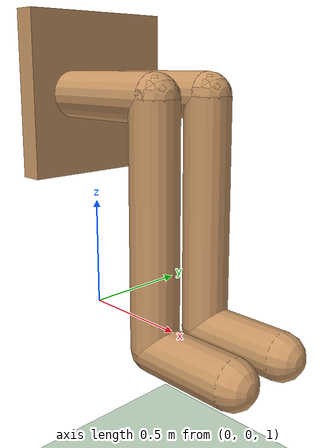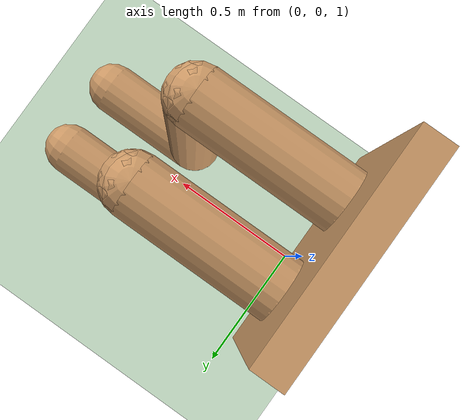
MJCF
<?xml version="1.0" encoding="utf-8"?>
<mujoco model="srlrobot">
	<compiler/>
	<option gravity="0 0 0"/>
	<size nconmax="500" njmax="1000"/>
	<custom/>
	<default>
		<joint armature="1" damping="1" limited="true"/>
		<geom conaffinity="0" condim="3" margin="0.01" rgba="0.8 0.6 0.4 1"/>
	</default>
	<asset>
		<texture builtin="gradient" height="100" rgb1="1 1 1" rgb2="0 0 0" type="skybox" width="100"/>
		<texture builtin="flat" height="1278" mark="cross" markrgb="1 1 1" name="texgeom" random="0.01" rgb1="0.8 0.6 0.4" rgb2="0.8 0.6 0.4" type="cube" width="127"/>
		<texture builtin="checker" height="100" name="texplane" rgb1="0 0 0" rgb2="0.8 0.8 0.8" type="2d" width="100"/>
		<material name="MatPlane" reflectance="0.5" shininess="1" specular="1" texrepeat="60 60" texture="texplane"/>
		<material name="geom" texture="texgeom" texuniform="true"/>
	</asset>
	<worldbody>
		<light cutoff="100" diffuse="1 1 1" dir="0 0 -1.3" directional="true" exponent="1" pos="0 0 1.3" specular="0.1 0.1 0.1"/>
		<geom conaffinity="1" condim="3" material="MatPlane" name="floor" pos="0 0 0" rgba="0.8 0.9 0.8 1" size="40 40 40" type="plane"/>
		<body name="root" pos="0 0 2" euler="0 0 0">
			<geom name="geomroot" pos="0 0 0" size="0.05 0.35 0.35" type="box"/>
			<body name="leg1" pos="0.05 -0.15 0" euler="0 0 0">
				<geom fromto="0 0 0 0.5 0 0" name="geomleg1" size="0.1" type="capsule"/>
				<joint axis="0 0 1" name="joint_joint01" pos="0 0 0" range="-45 45" type="hinge"/>
				<joint axis="0 1 0" name="joint_joint02" pos="0 0 0" range="-45 45" type="hinge"/>
				<body name="shin1" pos="0.5 0 0" euler="0 90 0">
					<geom fromto="0 0 0 1.0 0 0" name="geomshin1" size="0.1" type="capsule"/>
					<joint axis="0 1 0" name="joint_joint1" pos="0 0 0" range="-45 45" type="hinge"/>
					<body name="shin2" pos="1.0 0 0" euler="0 -90 0">
						<geom fromto="0 0 0 0.4 0 0" name="geomshin2" size="0.1" type="capsule"/>
						<joint axis="0 1 0" name="joint_joint2" pos="0 0 0" range="-45 45" type="hinge"/>
					</body>
				</body>
			</body>
			<body name="leg2" pos="0.05 0.15 0" euler="0 0 0">
				<geom fromto="0 0 0 0.5 0 0" name="geomleg2" size="0.1" type="capsule"/>
				<joint axis="0 0 1" name="joint_joint11" pos="0 0 0" range="-45 45" type="hinge"/>
				<joint axis="0 1 0" name="joint_joint12" pos="0 0 0" range="-45 45" type="hinge"/>
				<body name="shin11" pos="0.5 0 0" euler="0 90 0">
					<geom fromto="0 0 0 1.0 0 0" name="geomshin11" size="0.1" type="capsule"/>
					<joint axis="0 1 0" name="joint_joint13" pos="0 0 0" range="-45 45" type="hinge"/>
					<body name="shin12" pos="1.0 0 0" euler="0 -90 0">
						<geom fromto="0 0 0 0.4 0 0" name="geomshin12" size="0.1" type="capsule"/>
						<joint axis="0 1 0" name="joint_joint14" pos="0 0 0" range="-45 45" type="hinge"/>
					</body>
				</body>
			</body>
		</body>
	</worldbody>
	<actuator>
		<motor ctrllimited="true" ctrlrange="-1 1" joint="joint_joint01"/>
		<motor ctrllimited="true" ctrlrange="-1 1" joint="joint_joint02"/>
		<motor ctrllimited="true" ctrlrange="-1 1" joint="joint_joint1"/>
		<motor ctrllimited="true" ctrlrange="-1 1" joint="joint_joint2"/>
		<motor ctrllimited="true" ctrlrange="-1 1" joint="joint_joint11"/>
		<motor ctrllimited="true" ctrlrange="-1 1" joint="joint_joint12"/>
		<motor ctrllimited="true" ctrlrange="-1 1" joint="joint_joint13"/>
		<motor ctrllimited="true" ctrlrange="-1 1" joint="joint_joint14"/>
	</actuator>
</mujoco>
